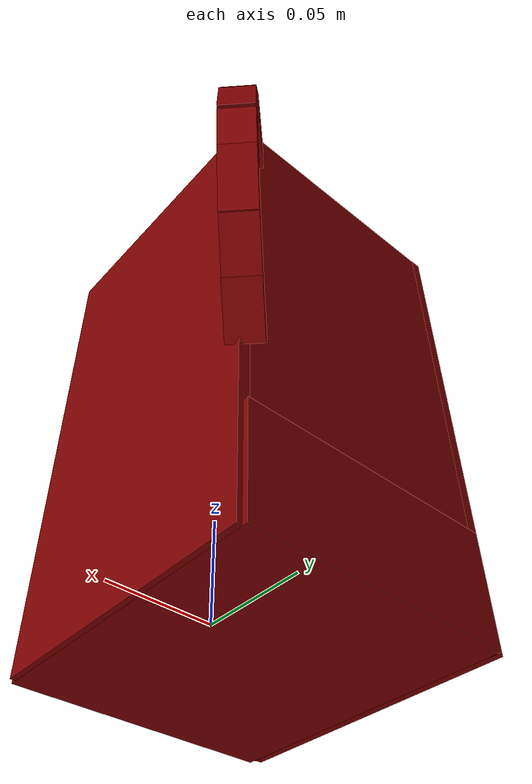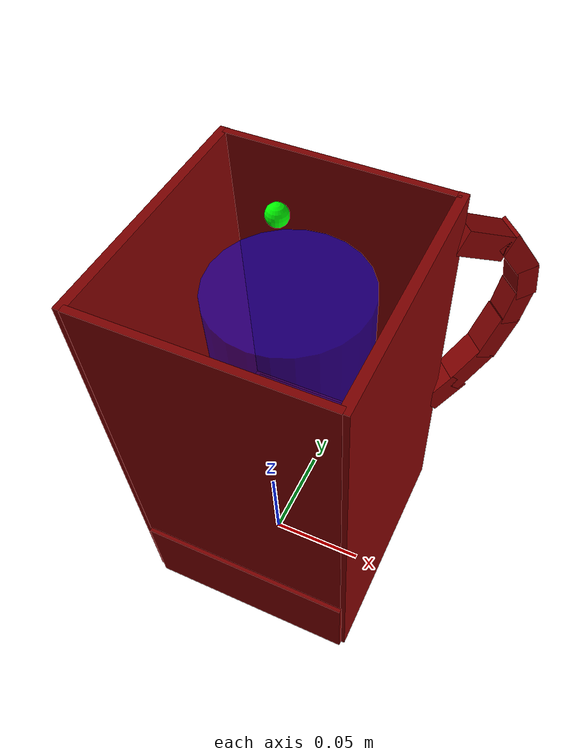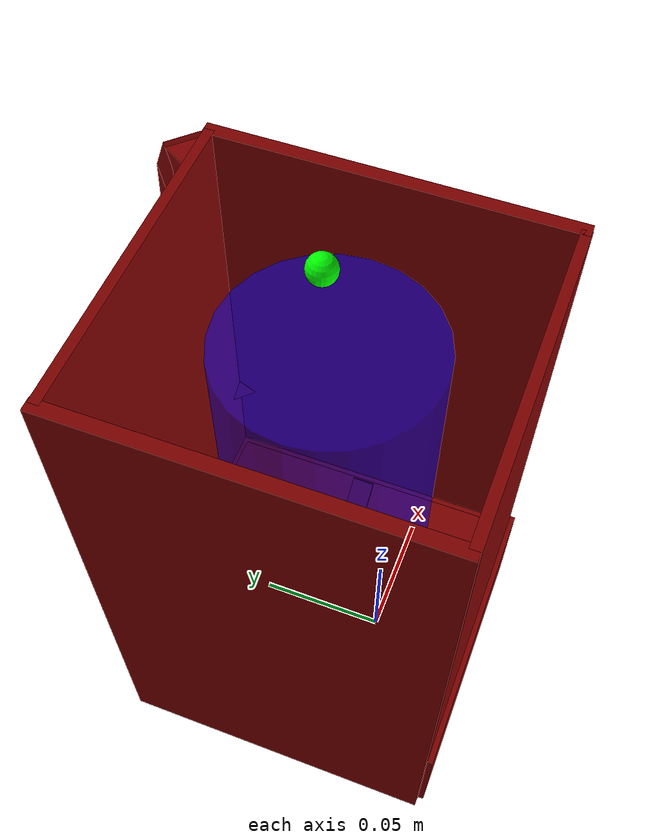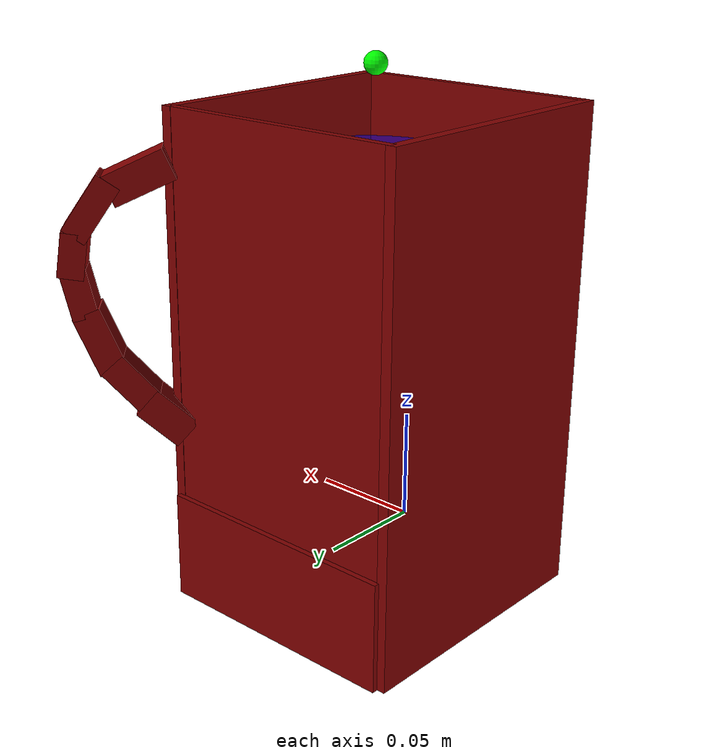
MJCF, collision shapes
<mujoco model="model">
  <option timestep="0.002" gravity="0.0 0.0 -9.81"/>
  <compiler angle="radian"/>
  <asset>
    <mesh file="visuals/blade.obj" name="blade_vis"/>
    <mesh file="visuals/pitcher.obj" name="pitcher_vis"/>
    <mesh file="visuals/pitcher_main.obj" name="pitcher_main_vis"/>
    <texture file="visuals/T_BC001.png" name="pitcher_material" type="2d"/>
    <material name="pitcher_material" rgba="1 1 1 1.0" texture="pitcher_material" shininess="0.141421377658844" specular="0.3103448502657381"/>
    <texture file="visuals/T_BC001.png" name="blade_material" type="2d"/>
    <material name="blade_material" rgba="1 1 1 1.0" texture="blade_material" shininess="0.141421377658844" specular="0.3103448502657381"/>
    <texture file="visuals/T_BC001.png" name="pitcher_main_material" type="2d"/>
    <material name="pitcher_main_material" rgba="1 1 1 0.699999988079071" texture="pitcher_main_material" shininess="0.141421377658844" specular="0.3103448502657381"/>
  </asset>
  <default>
    <default class="visual">
      <geom conaffinity="0" contype="0" group="1" type="mesh"/>
    </default>
    <default class="collision">
      <geom group="0" rgba="0.5 0 0 0.5" density="1000" solref="0.004 1" solimp="0.998 0.998 0.001"/>
    </default>
    <default class="spawn">
      <geom group="0" rgba="1 1 1 0.5" contype="0" conaffinity="0"/>
      <site group="0" rgba="1 1 1 0.5"/>
    </default>
    <default class="region">
      <geom group="1" conaffinity="0" contype="0" rgba="0 1 0 0" mass="0"/>
    </default>
  </default>
  <worldbody>
    <body>
      <body name="object">
        <body name="pitcher">
          <geom mesh="pitcher_vis" type="mesh" solimp="0.998 0.998 0.001" solref="0.001 1" friction="0.95 0.3 0.1" class="visual" material="pitcher_material"/>
          <geom type="box" pos="-0.00025046 0.02358901 0.00032782" size="0.053218137472867966 0.05842722952365875 0.02310650795698166" quat="1.0 0.0 0.0 0.0" class="collision"/>
          <geom type="cylinder" pos="0.00293614 0.02158020 0.02463936" size="0.03135425224900246 0.0020198319107294083" quat="1.0 0.0 0.0 0.0" class="collision"/>
          <geom class="collision" type="box" pos="0.08078104 0.11086783 0.15553993" size="0.007248188368976116 0.0056839436292648315 0.013998336158692837" quat="0.8825566172599792 0.2732164263725281 -0.11316992342472076 -0.3655669093132019" name="pitcher_handle_0"/>
          <geom class="collision" type="box" pos="0.08690808 0.11699486 0.13578876" size="0.007248187903314829 0.0056839436292648315 0.0097365016117692" quat="0.9214878082275391 0.06643422693014145 -0.02751796878874302 -0.38169291615486145" name="pitcher_handle_1"/>
          <geom class="collision" type="box" pos="0.08557401 0.11566078 0.11867500" size="0.007248187903314829 0.005683943163603544 0.01045980304479599" quat="0.9183672070503235 -0.10077226161956787 0.04174123704433441 -0.3804002106189728" name="pitcher_handle_2"/>
          <geom class="collision" type="box" pos="0.08032447 0.11041125 0.09770958" size="0.007248187903314829 0.006306304596364498 0.01399833895266056" quat="0.9063113331794739 -0.17931292951107025 0.07427385449409485 -0.37540650367736816" name="pitcher_handle_3"/>
          <geom class="collision" type="box" pos="0.07055561 0.10064239 0.07697442" size="0.007248187903314829 0.006306304596364498 0.013998337090015411" quat="0.862011730670929 -0.3323991894721985 0.13768424093723297 -0.3570568859577179" name="pitcher_handle_4"/>
          <geom class="collision" type="box" pos="0.06095568 0.09104246 0.06233027" size="0.007248187903314829 0.0073153674602508545 0.011512507684528828" quat="0.8406223058700562 -0.3832850754261017 0.1587619036436081 -0.34819725155830383" name="pitcher_handle_5"/>
          <geom class="collision" type="box" pos="0.06649386 0.09658064 0.16858060" size="0.007248188368976116 0.013998333364725113 0.006940603256225586" quat="0.9029157757759094 -0.19569504261016846 0.0810595452785492 -0.3739999234676361" name="pitcher_handle_6"/>
          <body name="blade">
            <geom mesh="blade_vis" type="mesh" solimp="0.998 0.998 0.001" solref="0.001 1" friction="0.95 0.3 0.1" class="visual" material="blade_material"/>
            <geom type="cylinder" pos="0.00223650 0.02223911 0.03014952" size="0.010992518626153469 0.0019860181491822004" quat="1.0 0.0 0.0 0.0" class="collision"/>
            <geom type="box" pos="-0.00622816 0.03753667 0.03227631" size="0.004382163751870394 0.009873579256236553 0.0014099429827183485" quat="0.9596688747406006 0.10713987052440643 0.02883859910070896 0.2583118677139282" class="collision"/>
            <geom type="box" pos="-0.01331299 0.04974379 0.03886632" size="0.004382163751870394 0.006865778472274542 0.0006997823365963995" quat="0.9061315655708313 0.33371978998184204 0.08982662111520767 0.24390141665935516" class="collision"/>
            <geom type="box" pos="-0.01503233 0.02199415 0.03758585" size="0.002498094690963626 0.003913902677595615 0.00039891761844046414" quat="0.657715380191803 0.2422304004430771 0.246499702334404 0.6693077087402344" class="collision"/>
            <geom type="box" pos="-0.00744480 0.02213470 0.03315353" size="0.002498094690963626 0.005628528073430061 0.000803751521743834" quat="0.6832320690155029 0.15710075199604034 0.1570800542831421 0.6955854892730713" class="collision"/>
            <geom type="box" pos="-0.01368735 -0.00627486 0.03886632" size="0.004382163751870394 0.006865778472274542 0.0006997823365963995" quat="0.24510179460048676 0.09026868641376495 0.33360037207603455 0.905807614326477" class="collision"/>
            <geom type="box" pos="-0.00657020 0.00591344 0.03227631" size="0.004382163751870394 0.009873579256236553 0.0014099429827183485" quat="0.2595832347869873 0.02898053452372551 0.10710156708955765 0.9593257904052734" class="collision"/>
            <geom type="box" pos="0.02113731 0.02173126 0.03227631" size="0.004382163751870394 0.009873579256236553 0.0014099429827183485" quat="0.7020411491394043 0.07837764918804169 -0.07853382080793381 -0.7034398317337036" class="collision"/>
            <geom type="box" pos="0.03525141 0.02170317 0.03886632" size="0.004382163751870394 0.006865778472274542 0.0006997823365963995" quat="0.6628762483596802 0.24413099884986877 -0.24461738765239716 -0.6641968488693237" class="collision"/>
            <geom type="box" pos="0.00918651 0.01180637 0.03350693" size="0.0024980942253023386 0.005628528073430061 0.000803751521743834" quat="0.26403868198394775 0.05822960287332535 -0.21439240872859955 -0.9385780692100525" class="collision"/>
            <geom type="box" pos="0.01314704 0.00533300 0.03793925" size="0.0024980942253023386 0.003913902677595615 0.00039891761844046414" quat="0.2539174556732178 0.09351541101932526 -0.33270493149757385 -0.903376042842865" class="collision"/>
            <geom type="box" pos="0.01284448 0.03860110 0.03770008" size="0.0024980944581329823 0.003913902677595615 0.00039891761844046414" quat="0.9036177396774292 0.3327938914299011 -0.09319815039634705 -0.25305595993995667" class="collision"/>
            <geom type="box" pos="0.00890995 0.03211190 0.03326776" size="0.0024980942253023386 0.005628528073430061 0.0008037514635361731" quat="0.9389471411705017 0.21339333057403564 -0.06179073452949524 -0.2627231776714325" class="collision"/>
          </body>
          <body name="pitcher_main">
            <geom class="region" type="cylinder" size="0.038467057049274445 0.06405725330114365" pos="0.00445798 0.02401215 0.11105417" rgba="0 0 1 0.5" name="reg_int"/>
            <geom mesh="pitcher_main_vis" type="mesh" solimp="0.998 0.998 0.001" solref="0.001 1" friction="0.95 0.3 0.1" class="visual" material="pitcher_main_material"/>
            <geom type="box" pos="-0.00033165 -0.03894885 0.08480909" size="0.05835390090942383 0.001825041719712317 0.11188007891178131" quat="1.0 0.0 0.0 0.0" class="collision"/>
            <geom type="box" pos="-0.05925426 0.02377046 0.08480910" size="0.002444611396640539 0.06429202854633331 0.11187996715307236" quat="1.0 0.0 0.0 0.0" class="collision"/>
            <geom type="box" pos="0.05831435 0.02377046 0.08480910" size="0.002464020624756813 0.0642918273806572 0.11188007891178131" quat="1.0 0.0 0.0 0.0" class="collision"/>
            <geom type="box" pos="-0.00033165 0.08602986 0.08480909" size="0.05835390090942383 0.0018287966959178448 0.11188007891178131" quat="1.0 0.0 0.0 0.0" class="collision"/>
            <geom type="box" pos="0.00046516 0.02377511 -0.00251399" size="0.058229099959135056 0.06666272133588791 0.02488800324499607" quat="1.0 0.0 0.0 0.0" class="collision"/>
          </body>
        </body>
        <geom class="region" name="reg_bbox" density="0" type="box" pos="0.013737 0.03952699999999999 0.087005" size="0.079597 0.08433 0.110849"/>
      </body>
      <site rgba="0 1 0 1" size="0.005" pos="0.00114566 0.0249901 0.21263005" name="anchor_site"/>
    </body>
  </worldbody>
</mujoco>
